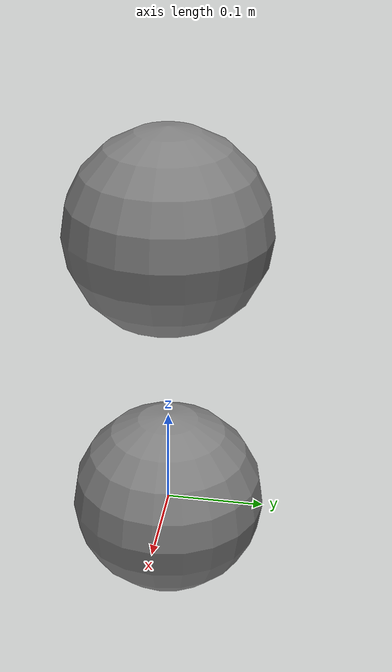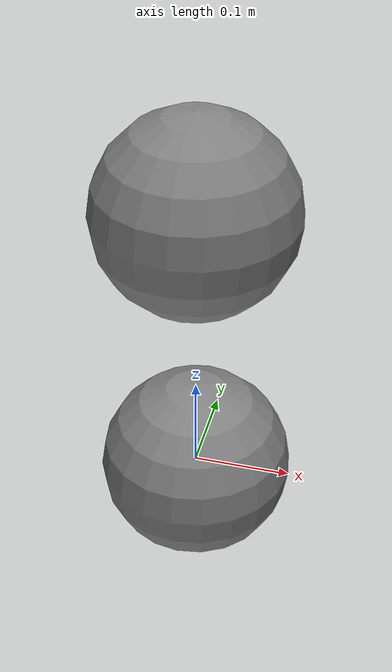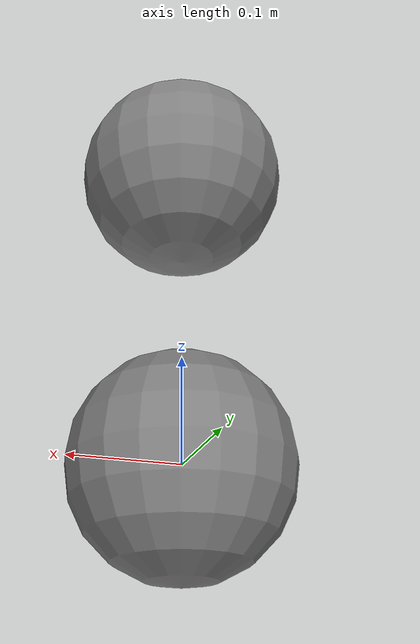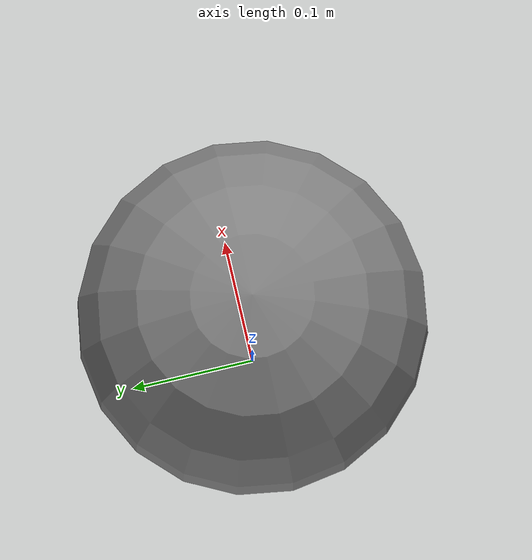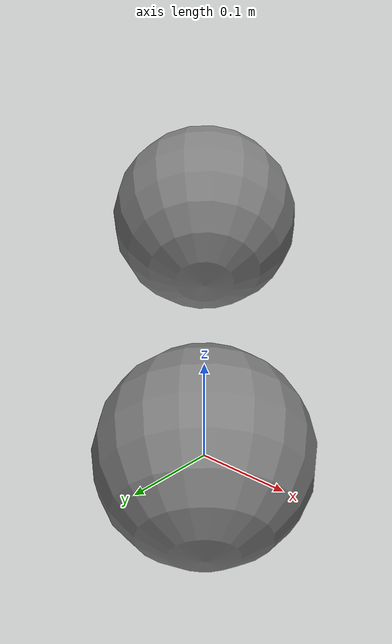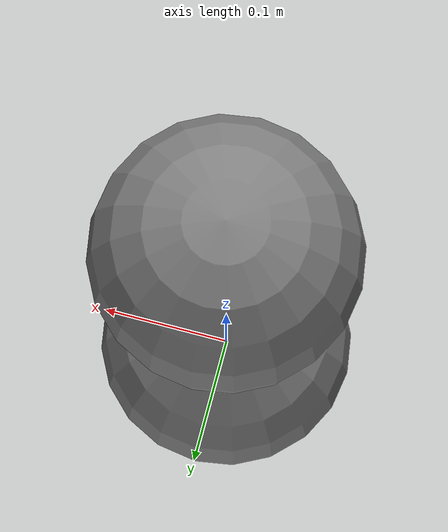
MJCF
<mujoco model="native-probe-two-joints">
  <compiler angle="radian"/>
  <worldbody>
    <body name="slider">
      <joint name="slide" type="slide" axis="0 0 1" ref="0.25"/>
      <geom type="sphere" size="0.1" mass="2"/>
      <body name="hinge" pos="0 0 0.3">
        <joint name="hinge" type="hinge" axis="0 1 0" ref="-0.5"/>
        <geom type="sphere" size="0.1" mass="3"/>
      </body>
    </body>
  </worldbody>
</mujoco>
